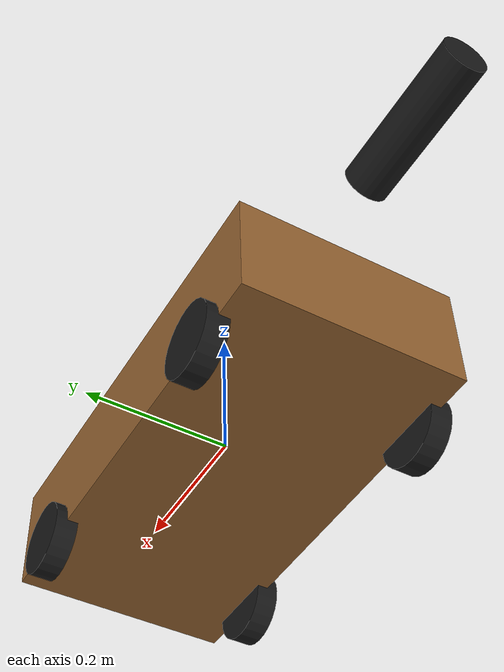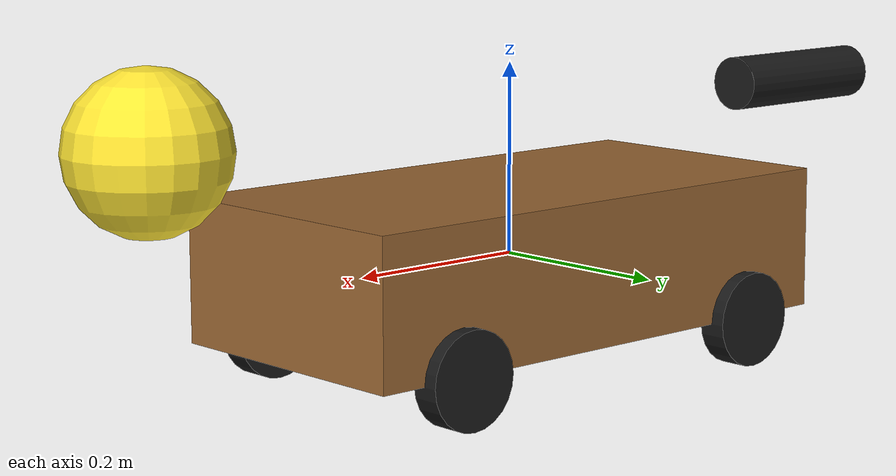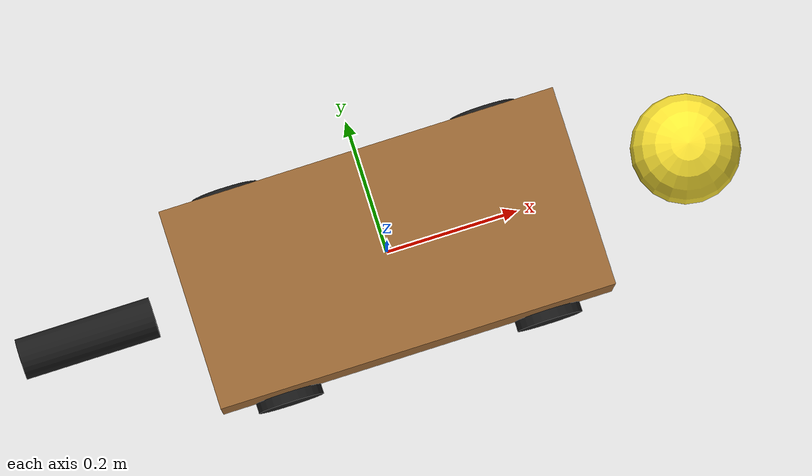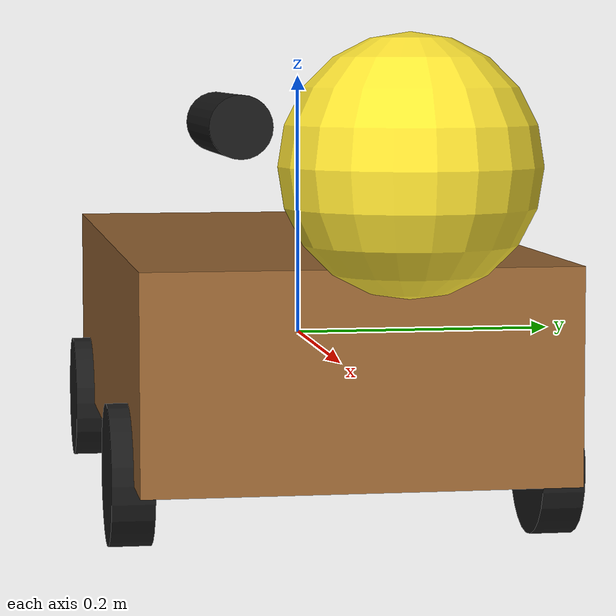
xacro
<?xml version="1.0"?>
<robot name="dog_robot" xmlns:xacro="http://www.ros.org/wiki/xacro">

  <!-- ================= BODY ================= -->
  <link name="base_link">
    <visual>
      <geometry>
        <box size="0.6 0.3 0.15"/>
      </geometry>
      <material name="brown">
        <color rgba="0.6 0.4 0.2 1.0"/>
      </material>
    </visual>

    <collision>
      <geometry>
        <box size="0.6 0.3 0.15"/>
      </geometry>
    </collision>

    <inertial>
      <mass value="5.0"/>
      <inertia ixx="0.1" iyy="0.1" izz="0.1"
               ixy="0" ixz="0" iyz="0"/>
    </inertial>
  </link>

  <!-- ================= FACE ================= -->
  <link name="face_link">
    <visual>
      <origin xyz="0.35 0 0.1"/>
      <geometry>
        <sphere radius="0.08"/>
      </geometry>
      <material name="yellow">
        <color rgba="1.0 0.9 0.2 1.0"/>
      </material>
    </visual>

    <collision>
      <origin xyz="0.35 0 0.1"/>
      <geometry>
        <sphere radius="0.08"/>
      </geometry>
    </collision>

    <inertial>
      <mass value="1.0"/>
      <inertia ixx="0.02" iyy="0.02" izz="0.02"
               ixy="0" ixz="0" iyz="0"/>
    </inertial>
  </link>

  <!-- ================= TAIL ================= -->
  <link name="tail_link">
    <visual>
      <origin xyz="-0.35 0 0.1" rpy="0 1.5708 0"/>
      <geometry>
        <cylinder radius="0.03" length="0.2"/>
      </geometry>
      <material name="black">
        <color rgba="0.1 0.1 0.1 1.0"/>
      </material>
    </visual>

    <collision>
      <origin xyz="-0.35 0 0.1" rpy="0 1.5708 0"/>
      <geometry>
        <cylinder radius="0.03" length="0.2"/>
      </geometry>
    </collision>

    <inertial>
      <mass value="0.5"/>
      <inertia ixx="0.01" iyy="0.01" izz="0.01"
               ixy="0" ixz="0" iyz="0"/>
    </inertial>
  </link>

  <!-- ================= WHEELS ================= -->
  <link name="wheel_fl">
    <visual>
      <origin rpy="1.5708 0 0"/>
      <geometry>
        <cylinder radius="0.05" length="0.03"/>
      </geometry>
      <material name="black"/>
    </visual>
    <collision>
      <origin rpy="1.5708 0 0"/>
      <geometry>
        <cylinder radius="0.05" length="0.03"/>
      </geometry>
    </collision>
    <inertial>
      <mass value="0.5"/>
      <inertia ixx="0.01" iyy="0.01" izz="0.01"
               ixy="0" ixz="0" iyz="0"/>
    </inertial>
  </link>

  <link name="wheel_fr">
    <visual>
      <origin rpy="1.5708 0 0"/>
      <geometry>
        <cylinder radius="0.05" length="0.03"/>
      </geometry>
      <material name="black"/>
    </visual>
    <collision>
      <origin rpy="1.5708 0 0"/>
      <geometry>
        <cylinder radius="0.05" length="0.03"/>
      </geometry>
    </collision>
    <inertial>
      <mass value="0.5"/>
      <inertia ixx="0.01" iyy="0.01" izz="0.01"
               ixy="0" ixz="0" iyz="0"/>
    </inertial>
  </link>

  <link name="wheel_rl">
    <visual>
      <origin rpy="1.5708 0 0"/>
      <geometry>
        <cylinder radius="0.05" length="0.03"/>
      </geometry>
      <material name="black"/>
    </visual>
    <collision>
      <origin rpy="1.5708 0 0"/>
      <geometry>
        <cylinder radius="0.05" length="0.03"/>
      </geometry>
    </collision>
    <inertial>
      <mass value="0.5"/>
      <inertia ixx="0.01" iyy="0.01" izz="0.01"
               ixy="0" ixz="0" iyz="0"/>
    </inertial>
  </link>

  <link name="wheel_rr">
    <visual>
      <origin rpy="1.5708 0 0"/>
      <geometry>
        <cylinder radius="0.05" length="0.03"/>
      </geometry>
      <material name="black"/>
    </visual>
    <collision>
      <origin rpy="1.5708 0 0"/>
      <geometry>
        <cylinder radius="0.05" length="0.03"/>
      </geometry>
    </collision>
    <inertial>
      <mass value="0.5"/>
      <inertia ixx="0.01" iyy="0.01" izz="0.01"
               ixy="0" ixz="0" iyz="0"/>
    </inertial>
  </link>

  <!-- ================= JOINTS ================= -->

  <!-- Face -->
  <joint name="face_joint" type="fixed">
    <parent link="base_link"/>
    <child link="face_link"/>
    <origin xyz="0.1 0 0.05"/>
  </joint>

  <!-- Tail -->
  <joint name="tail_joint" type="fixed">
    <parent link="base_link"/>
    <child link="tail_link"/>
    <origin xyz="-0.1 0 0.05"/>
  </joint>

  <!-- Wheels -->
  <joint name="joint_fl" type="continuous">
    <parent link="base_link"/>
    <child link="wheel_fl"/>
    <origin xyz="0.2 0.15 -0.075"/>
    <axis xyz="0 1 0"/>
  </joint>

  <joint name="joint_fr" type="continuous">
    <parent link="base_link"/>
    <child link="wheel_fr"/>
    <origin xyz="0.2 -0.15 -0.075"/>
    <axis xyz="0 1 0"/>
  </joint>

  <joint name="joint_rl" type="continuous">
    <parent link="base_link"/>
    <child link="wheel_rl"/>
    <origin xyz="-0.2 0.15 -0.075"/>
    <axis xyz="0 1 0"/>
  </joint>

  <joint name="joint_rr" type="continuous">
    <parent link="base_link"/>
    <child link="wheel_rr"/>
    <origin xyz="-0.2 -0.15 -0.075"/>
    <axis xyz="0 1 0"/>
  </joint>

<gazebo>
  <plugin
    filename="libgz_ros2_control-system.so"
    name="gz_ros2_control::GazeboSystem">
  </plugin>
</gazebo>

</robot>
